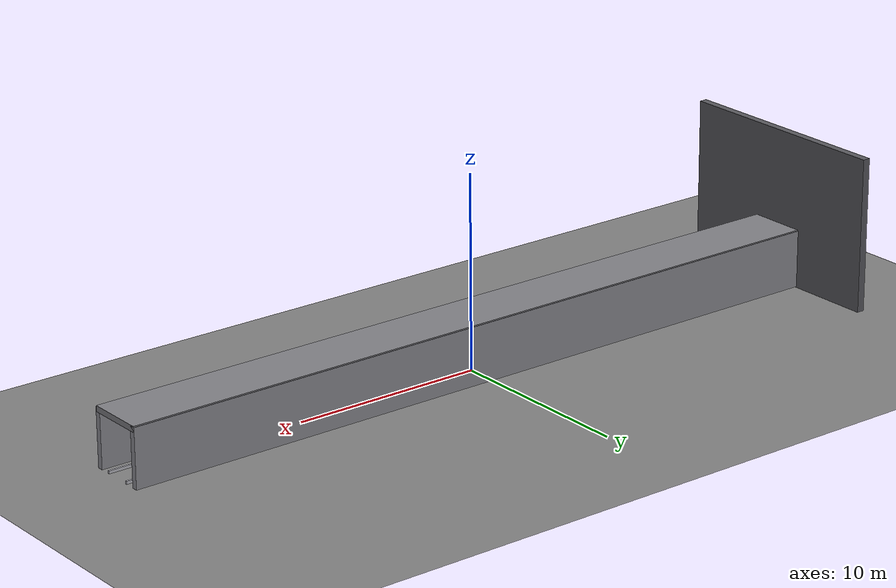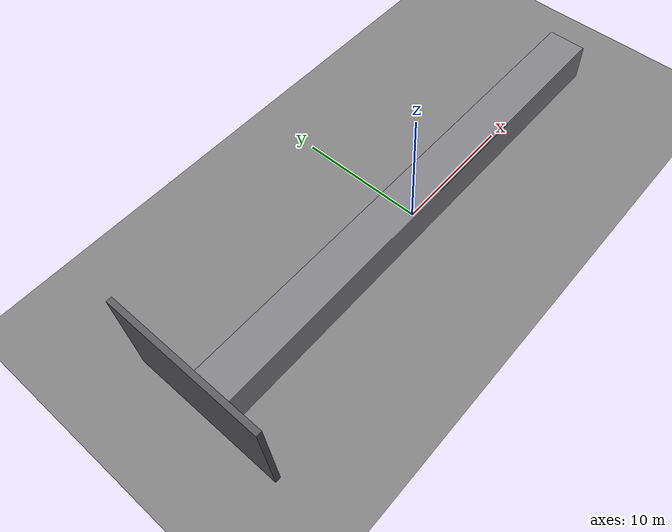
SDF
<sdf version="1.9">
 <world name="tunnel_world">
  <model name="ground_plane">
   <static>true</static>
   <link name="ground">
    <collision name="ground_collision">
     <geometry><plane><normal>0 0 1</normal><size>100 100</size></plane></geometry>
    </collision>
    <visual name="ground_visual">
     <geometry><plane><normal>0 0 1</normal><size>100 100</size></plane></geometry>
     <material>
      <diffuse>0.50 0.50 0.50 1</diffuse>
      <emissive>0.08 0.08 0.08 1</emissive>
      <ambient>0.5 0.5 0.5</ambient>
     </material>
    </visual>
   </link>
  </model>
  <model name="tunnel_left_wall">
   <static>true</static>
   <pose>0 1.4 1.5 0 0 0</pose>
   <link name="wall">
    <visual name="wall_visual">
     <geometry><box><size>40 0.3 3</size></box></geometry>
     <material>
      <diffuse>0.55 0.55 0.58 1</diffuse>
      <emissive>0.09 0.09 0.09 1</emissive>
      <ambient>0.55 0.55 0.58</ambient>
     </material>
    </visual>
    <collision name="wall_collision"><geometry><box><size>40 0.3 3</size></box></geometry></collision>
   </link>
  </model>
  <model name="tunnel_right_wall">
   <static>true</static>
   <pose>0 -1.4 1.5 0 0 0</pose>
   <link name="wall">
    <visual name="wall_visual">
     <geometry><box><size>40 0.3 3</size></box></geometry>
     <material>
      <diffuse>0.55 0.55 0.58 1</diffuse>
      <emissive>0.09 0.09 0.09 1</emissive>
      <ambient>0.55 0.55 0.58</ambient>
     </material>
    </visual>
    <collision name="wall_collision"><geometry><box><size>40 0.3 3</size></box></geometry></collision>
   </link>
  </model>
  <model name="tunnel_ceiling">
   <static>true</static>
   <pose>0 0 2.9 0 0 0</pose>
   <link name="ceiling">
    <visual name="ceiling_visual">
     <geometry><box><size>40 3 0.3</size></box></geometry>
     <material>
      <diffuse>0.50 0.50 0.52 1</diffuse>
      <emissive>0.08 0.08 0.08 1</emissive>
      <ambient>0.5 0.5 0.52</ambient>
     </material>
    </visual>
    <collision name="ceiling_collision"><geometry><box><size>40 3 0.3</size></box></geometry></collision>
   </link>
  </model>
  <model name="rail_left">
   <static>true</static>
   <pose>0 0.717 0.075 0 0 0</pose>
   <link name="rail">
    <visual name="visual">
     <geometry><box><size>40 0.09 0.15</size></box></geometry>
     <material>
      <diffuse>0.72 0.72 0.75 1</diffuse>
      <emissive>0.12 0.12 0.12 1</emissive>
      <ambient>0.72 0.72 0.75</ambient>
     </material>
    </visual>
    <collision name="collision"><geometry><box><size>40 0.09 0.15</size></box></geometry></collision>
   </link>
  </model>
  <model name="rail_right">
   <static>true</static>
   <pose>0 -0.717 0.075 0 0 0</pose>
   <link name="rail">
    <visual name="visual">
     <geometry><box><size>40 0.09 0.15</size></box></geometry>
     <material>
      <diffuse>0.72 0.72 0.75 1</diffuse>
      <emissive>0.12 0.12 0.12 1</emissive>
      <ambient>0.72 0.72 0.75</ambient>
     </material>
    </visual>
    <collision name="collision"><geometry><box><size>40 0.09 0.15</size></box></geometry></collision>
   </link>
  </model>
  <model name="tunnel_end_wall_near">
   <static>true</static>
   <pose>-20 0 3.5 0 0 0</pose>
   <link name="wall">
    <visual name="visual">
     <geometry><box><size>0.4 12 9</size></box></geometry>
     <material>
      <diffuse>0.35 0.35 0.37 1</diffuse>
      <emissive>0.06 0.06 0.06 1</emissive>
      <ambient>0.35 0.35 0.37</ambient>
     </material>
    </visual>
    <collision name="collision"><geometry><box><size>0.4 12 9</size></box></geometry></collision>
   </link>
  </model>
 </world>
</sdf>
